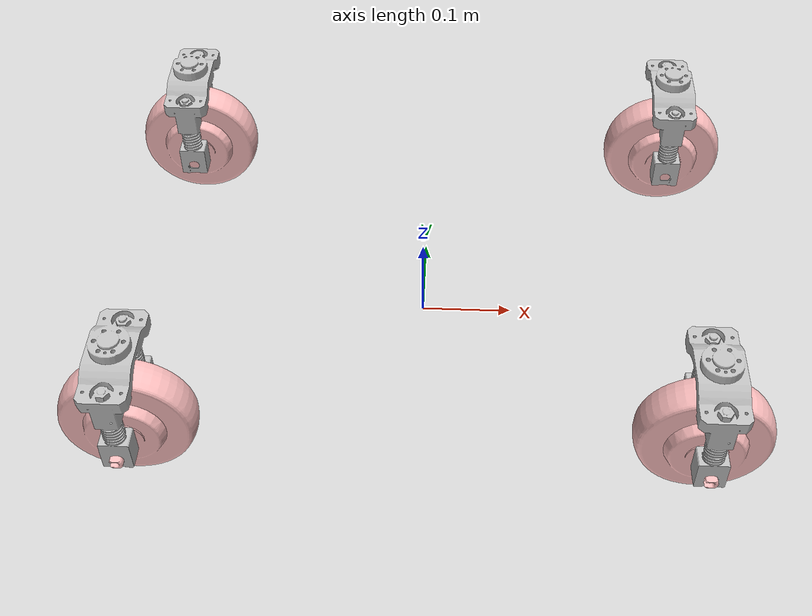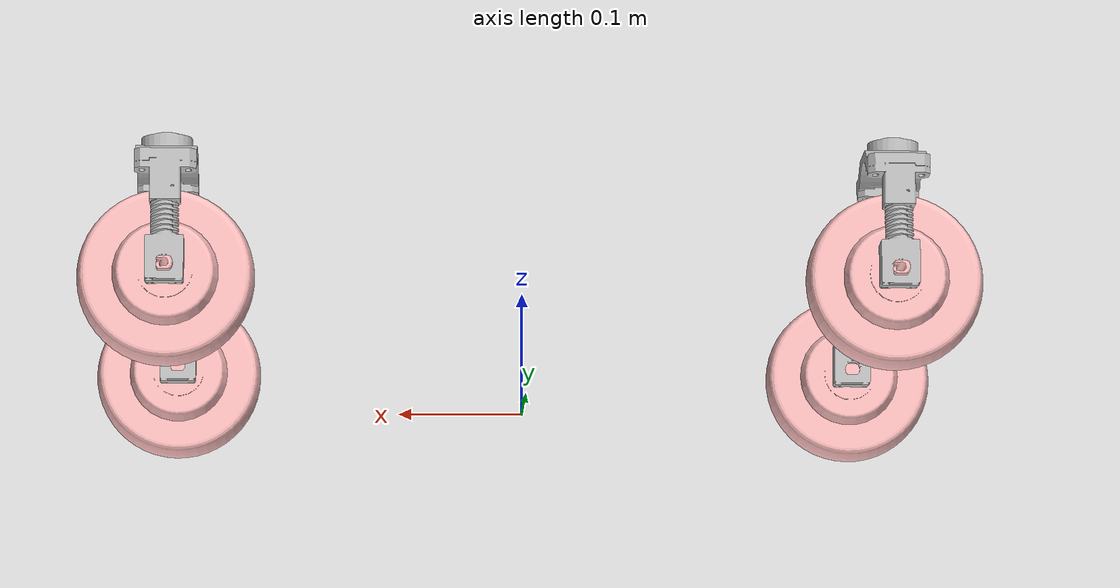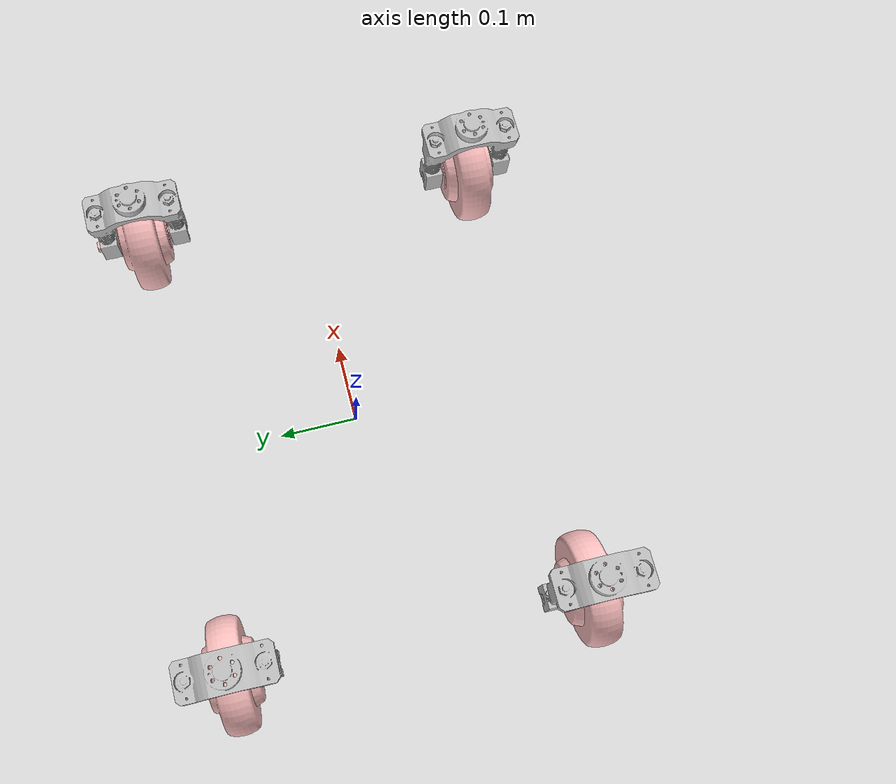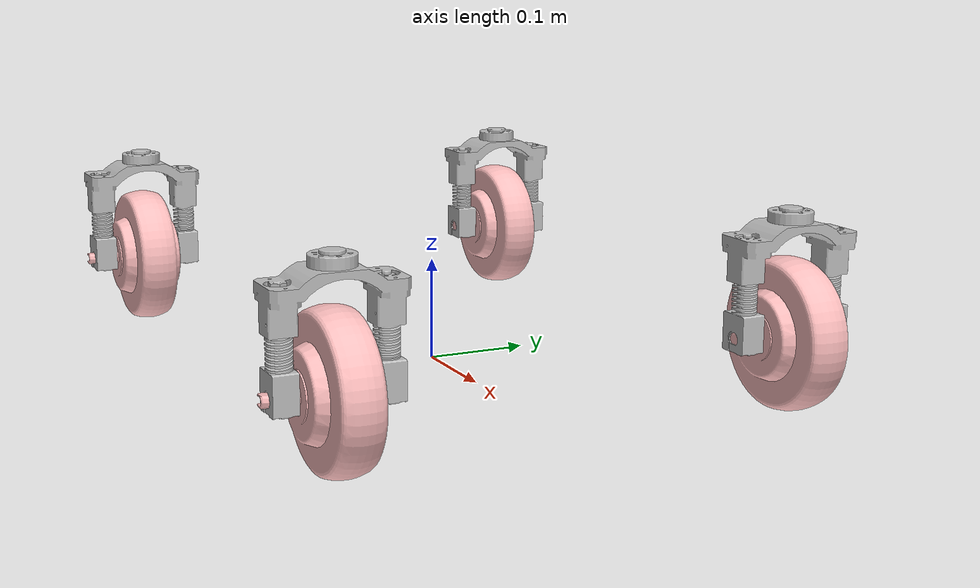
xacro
<?xml version="1.0"?>

<robot name="holonomic_base"
    xmlns:xacro="http://ros.org/wiki/xacro">

    <link name="base_link">
    </link>

    <link name="leg_fl">
        <inertial>
            <origin xyz="0.0 0.0 -0.041346" rpy="0 0 0" />
            <mass value="0.1509" />
            <inertia ixx="8.621E-05" ixy="-2.6953E-09" ixz="-8.1387E-10" iyy="5.4519E-05" iyz="1.5042E-09" izz="6.6419E-05" />
        </inertial>
        <visual>
            <origin xyz="0 0 0" rpy="0 0 0" />
            <geometry>
                <mesh filename="package://swerve_description/meshes/holonomic/turn_front_left_link.STL" />
            </geometry>
            <material name="">
                <color rgba="0.75294 0.75294 0.75294 1" />
            </material>
        </visual>
        <collision>
            <origin xyz="0 0 0" rpy="0 0 0" />
            <geometry>
                <mesh filename="package://swerve_description/meshes/holonomic/turn_front_left_link.STL" />
            </geometry>
        </collision>
    </link>

    <joint name="left_front_steer_joint" type="revolute">
        <origin xyz="0.285 0.215 0.1705" rpy="3.1415926 0 3.1415926" />
        <parent link="base_link" />
        <child link="leg_fl" />
        <axis xyz="0 0 1" />
        <limit effort="20.0" lower="-3.341" upper="3.341" velocity="1.00"/>
        <safety_controller k_position="100" k_velocity="100" soft_lower_limit="-3.141" soft_upper_limit="3.141" />
        <joint_properties damping="1.0" friction="5.0"/>
    </joint>
    <transmission name="leg_fl_trans">
        <type>transmission_interface/SimpleTransmission</type>
        <actuator name="$leg_fl_steering">
            <mechanicalReduction>1</mechanicalReduction>
        </actuator>
        <joint name="left_front_steer_joint">
            <hardwareInterface>hardware_interface/VelocityJointInterface</hardwareInterface>
        </joint>
    </transmission>

    <link name="leg_fr">
        <inertial>
            <origin xyz="-2.4774E-06 4.2768E-06 -0.041346" rpy="0 0 0" />
            <mass value="0.1509" />
            <inertia ixx="8.621E-05" ixy="-2.6953E-09" ixz="8.1387E-10" iyy="5.4519E-05" iyz="-1.5042E-09" izz="6.6419E-05" />
        </inertial>
        <visual>
            <origin xyz="0 0 0" rpy="0 0 0" />
            <geometry>
                <mesh filename="package://swerve_description/meshes/holonomic/turn_front_right_link.STL" />
            </geometry>
            <material name="">
                <color rgba="0.75294 0.75294 0.75294 1" />
            </material>
        </visual>
        <collision>
            <origin xyz="0 0 0" rpy="0 0 0" />
            <geometry>
                <mesh filename="package://swerve_description/meshes/holonomic/turn_front_right_link.STL" />
            </geometry>
        </collision>
    </link>
    <joint name="right_front_steer_joint" type="revolute">
        <origin xyz="0.285 -0.215 0.1705" rpy="3.14159265358979 0 3.14159265358979" />
        <parent link="base_link" />
        <child link="leg_fr" />
        <axis xyz="0 0 1" />
        <limit effort="20.0" lower="-3.341" upper="3.341" velocity="1.00"/>
        <safety_controller k_position="100" k_velocity="100" soft_lower_limit="-3.141" soft_upper_limit="3.141" />
        <joint_properties damping="1.0" friction="5.0"/>
    </joint>
    <transmission name="leg_fr_trans">
        <type>transmission_interface/SimpleTransmission</type>
        <actuator name="$leg_fr_steering">
            <mechanicalReduction>1</mechanicalReduction>
        </actuator>
        <joint name="right_front_steer_joint">
            <hardwareInterface>hardware_interface/VelocityJointInterface</hardwareInterface>
        </joint>
    </transmission>

    <link name="leg_rl">
        <inertial>
            <origin xyz="2.47739936293234E-06 -0.00390427681696906 0.0596537478356015" rpy="0 0 0" />
            <mass value="0.150899435444674" />
            <inertia ixx="8.62104557625573E-05" ixy="-2.69534706876987E-09" ixz="-8.13867681148677E-10" iyy="5.45191084176943E-05" iyz="1.50418273401286E-09" izz="6.64192852433824E-05" />
        </inertial>
        <visual>
            <origin xyz="0 0 0" rpy="0 0 0" />
            <geometry>
                <mesh filename="package://swerve_description/meshes/holonomic/turn_back_left_link.STL" />
            </geometry>
            <material name="">
                <color rgba="0.752941176470588 0.752941176470588 0.752941176470588 1" />
            </material>
        </visual>
        <collision>
            <origin xyz="0 0 0" rpy="0 0 0" />
            <geometry>
                <mesh filename="package://swerve_description/meshes/holonomic/turn_back_left_link.STL" />
            </geometry>
        </collision>
    </link>
    <joint name="left_back_steer_joint" type="revolute">
        <origin xyz="-0.285 0.215 0.1705" rpy="-3.1416 0 0" />
        <parent link="base_link" />
        <child link="leg_rl" />
        <axis xyz="0 0 1" />
        <limit effort="20.0" lower="-3.341" upper="3.341" velocity="1.00"/>
        <safety_controller k_position="100" k_velocity="100" soft_lower_limit="-3.141" soft_upper_limit="3.141" />
        <joint_properties damping="1.0" friction="5.0"/>
    </joint>
    <transmission name="leg_rl_trans">
        <type>transmission_interface/SimpleTransmission</type>
        <actuator name="$leg_rl_steering">
            <mechanicalReduction>1</mechanicalReduction>
        </actuator>
        <joint name="left_back_steer_joint">
            <hardwareInterface>hardware_interface/VelocityJointInterface</hardwareInterface>
        </joint>
    </transmission>

    <link name="leg_rr">
        <inertial>
            <origin xyz="-2.4774E-06 4.2768E-06 -0.041346" rpy="0 0 0" />
            <mass value="0.1509" />
            <inertia ixx="8.621E-05" ixy="-2.6953E-09" ixz="8.1387E-10" iyy="5.4519E-05" iyz="-1.5042E-09" izz="6.6419E-05" />
        </inertial>
        <visual>
            <origin xyz="0 0 0" rpy="0 0 0" />
            <geometry>
                <mesh filename="package://swerve_description/meshes/holonomic/turn_back_right_link.STL" />
            </geometry>
            <material name="">
                <color rgba="0.75294 0.75294 0.75294 1" />
            </material>
        </visual>
        <collision>
            <origin xyz="0 0 0" rpy="0 0 0" />
            <geometry>
                <mesh filename="package://swerve_description/meshes/holonomic/turn_back_right_link.STL" />
            </geometry>
        </collision>
    </link>
    <joint name="right_back_steer_joint" type="revolute">
        <origin xyz="-0.285 -0.215 0.1705" rpy="3.1416 0 0" />
        <parent link="base_link" />
        <child link="leg_rr" />
        <axis xyz="0 0 1" />
        <limit effort="20.0" lower="-3.341" upper="3.341" velocity="1.00"/>
        <safety_controller k_position="100" k_velocity="100" soft_lower_limit="-3.141" soft_upper_limit="3.141" />
        <joint_properties damping="1.0" friction="5.0"/>
    </joint>
    <transmission name="leg_rr_trans">
        <type>transmission_interface/SimpleTransmission</type>
        <actuator name="$leg_rr_steering">
            <mechanicalReduction>1</mechanicalReduction>
        </actuator>
        <joint name="right_back_steer_joint">
            <hardwareInterface>hardware_interface/VelocityJointInterface</hardwareInterface>
        </joint>
    </transmission>

    <link name="wheel_fl">
        <inertial>
            <origin xyz="-6.7203E-07 -0.0039185 1.1995E-07" rpy="0 0 0" />
            <mass value="1.7978" />
            <inertia ixx="0.0022135" ixy="1.588E-07" ixz="2.5603E-08" iyy="0.003666" iyz="-1.0669E-08" izz="0.0022134" />
        </inertial>
        <visual>
            <origin xyz="0 0 0" rpy="0 0 0" />
            <geometry>
                <mesh filename="package://swerve_description/meshes/holonomic/wheel_front_left_link.STL" />
            </geometry>
            <material name="">
                <color rgba="1 0.75294 0.75294 1" />
            </material>
        </visual>
        <collision>
            <origin xyz="0 0 0" rpy="0 0 0" />
            <geometry>
                <mesh filename="package://swerve_description/meshes/holonomic/wheel_front_left_link.STL" />
            </geometry>
        </collision>
    </link>
    <joint name="left_front_wheel_joint" type="continuous">
        <origin xyz="0 0.0039 0.101" rpy="-1.5708 1.5708 0" />
        <parent link="leg_fl" />
        <child link="wheel_fl" />
        <axis xyz="0 0 1" />
        <limit effort="1000" velocity="11.52"/>
        <safety_controller k_position="100" k_velocity="100"/>
        <joint_properties damping="1.0" friction="5.0"/>
    </joint>
    <transmission name="wheel_fl_trans">
        <type>transmission_interface/SimpleTransmission</type>
        <actuator name="wheel_fl_drive">
            <mechanicalReduction>1</mechanicalReduction>
        </actuator>
        <joint name="left_front_wheel_joint">
            <hardwareInterface>hardware_interface/VelocityJointInterface</hardwareInterface>
        </joint>
    </transmission>
    <gazebo reference="wheel_fl">
        <mu1 value="0.7"/>
        <mu2 value="0.5"/>
        <kp value="300000.0" />
        <kd value="600.0" />
    </gazebo>

    <link name="wheel_fr">
        <inertial>
            <origin xyz="6.7203E-07 0.0039185 1.1995E-07" rpy="0 0 0" />
            <mass value="1.7978" />
            <inertia ixx="0.0022135" ixy="1.588E-07" ixz="-2.5603E-08" iyy="0.003666" iyz="1.0669E-08" izz="0.0022134" />
        </inertial>
        <visual>
            <origin xyz="0 0 0" rpy="0 0 0" />
            <geometry>
                <mesh filename="package://swerve_description/meshes/holonomic/wheel_front_right_link.STL" />
            </geometry>
            <material name="">
                <color rgba="1 0.75294 0.75294 1" />
            </material>
        </visual>
        <collision>
            <origin xyz="0 0 0" rpy="0 0 0" />
            <geometry>
                <mesh filename="package://swerve_description/meshes/holonomic/wheel_front_right_link.STL" />
            </geometry>
        </collision>
    </link>

    <joint name="right_front_wheel_joint" type="continuous">
        <origin xyz="0 -0.0039 0.101" rpy="1.5707963267949 1.5707963267949 0" />
        <parent link="leg_fr" />
        <child link="wheel_fr" />
        <axis xyz="0 0 1" />
        <limit effort="1000" velocity="11.52"/>
        <safety_controller k_position="100" k_velocity="100"/>
        <joint_properties damping="1.0" friction="5.0"/>
    </joint>
    <transmission name="wheel_fr_trans">
        <type>transmission_interface/SimpleTransmission</type>
        <actuator name="wheel_fr_drive">
            <mechanicalReduction>1</mechanicalReduction>
        </actuator>
        <joint name="right_front_wheel_joint">
            <hardwareInterface>hardware_interface/VelocityJointInterface</hardwareInterface>
        </joint>
    </transmission>
    <gazebo reference="wheel_fr">
        <mu1 value="0.7"/>
        <mu2 value="0.5"/>
        <kp value="300000.0" />
        <kd value="600.0" />
    </gazebo>

    <link name="wheel_rl">
        <inertial>
            <origin xyz="-6.7203E-07 -0.0039185 1.1995E-07" rpy="0 0 0" />
            <mass value="1.7978" />
            <inertia ixx="0.0022135" ixy="1.588E-07" ixz="2.5603E-08" iyy="0.003666" iyz="-1.0669E-08" izz="0.0022134" />
        </inertial>
        <visual>
            <origin xyz="0 0 0" rpy="0 0 0" />
            <geometry>
                <mesh filename="package://swerve_description/meshes/holonomic/wheel_back_left_link.STL" />
            </geometry>
            <material name="">
                <color rgba="1 0.75294 0.75294 1" />
            </material>
        </visual>
        <collision>
            <origin xyz="0 0 0" rpy="0 0 0" />
            <geometry>
                <mesh filename="package://swerve_description/meshes/holonomic/wheel_back_left_link.STL" />
            </geometry>
        </collision>
    </link>
    <joint name="left_back_wheel_joint" type="continuous">
        <origin xyz="0 -0.0039 0.101" rpy="1.5708 1.5708 0" />
        <parent link="leg_rl" />
        <child link="wheel_rl" />
        <axis xyz="0 0 1" />
        <limit effort="1000" velocity="11.52"/>
        <safety_controller k_position="100" k_velocity="100"/>
        <joint_properties damping="1.0" friction="5.0"/>
    </joint>
    <transmission name="wheel_rl_trans">
        <type>transmission_interface/SimpleTransmission</type>
        <actuator name="wheel_rl_drive">
            <mechanicalReduction>1</mechanicalReduction>
        </actuator>
        <joint name="left_back_wheel_joint">
            <hardwareInterface>hardware_interface/VelocityJointInterface</hardwareInterface>
        </joint>
    </transmission>
    <gazebo reference="wheel_rl">
        <mu1 value="0.7"/>
        <mu2 value="0.5"/>
        <kp value="300000.0" />
        <kd value="600.0" />
    </gazebo>

    <link name="wheel_rr">
        <inertial>
            <origin xyz="6.7203E-07 0.0039185 1.1995E-07" rpy="0 0 0" />
            <mass value="1.7978" />
            <inertia ixx="0.0022135" ixy="1.588E-07" ixz="-2.5603E-08" iyy="0.003666" iyz="1.0669E-08" izz="0.0022134" />
        </inertial>
        <visual>
            <origin xyz="0 0 0" rpy="0 0 0" />
            <geometry>
                <mesh filename="package://swerve_description/meshes/holonomic/wheel_back_right_link.STL" />
            </geometry>
            <material name="">
                <color rgba="1 0.75294 0.75294 1" />
            </material>
        </visual>
        <collision>
            <origin xyz="0 0 0" rpy="0 0 0" />
            <geometry>
                <mesh filename="package://swerve_description/meshes/holonomic/wheel_back_right_link.STL" />
            </geometry>
        </collision>
    </link>
    <joint name="right_back_wheel_joint" type="continuous">
        <origin xyz="0 0.0039 0.101" rpy="-1.5707963267949 1.5707963267949 0" />
        <parent link="leg_rr" />
        <child link="wheel_rr" />
        <axis xyz="0 0 1" />
        <limit effort="1000" velocity="11.52"/>
        <safety_controller k_position="100" k_velocity="100"/>
        <joint_properties damping="1.0" friction="5.0"/>
    </joint>
    <transmission name="wheel_rr_trans">
        <type>transmission_interface/SimpleTransmission</type>
        <actuator name="wheel_rr_drive">
            <mechanicalReduction>1</mechanicalReduction>
        </actuator>
        <joint name="right_back_wheel_joint">
            <hardwareInterface>hardware_interface/VelocityJointInterface</hardwareInterface>
        </joint>
    </transmission>
    <gazebo reference="wheel_rr">
        <mu1 value="0.7"/>
        <mu2 value="0.5"/>
        <kp value="300000.0" />
        <kd value="600.0" />
    </gazebo>

    <gazebo>
        <plugin name="gazebo_ros_control" filename="libgazebo_ros_control.so"/>
    </gazebo>

</robot>
